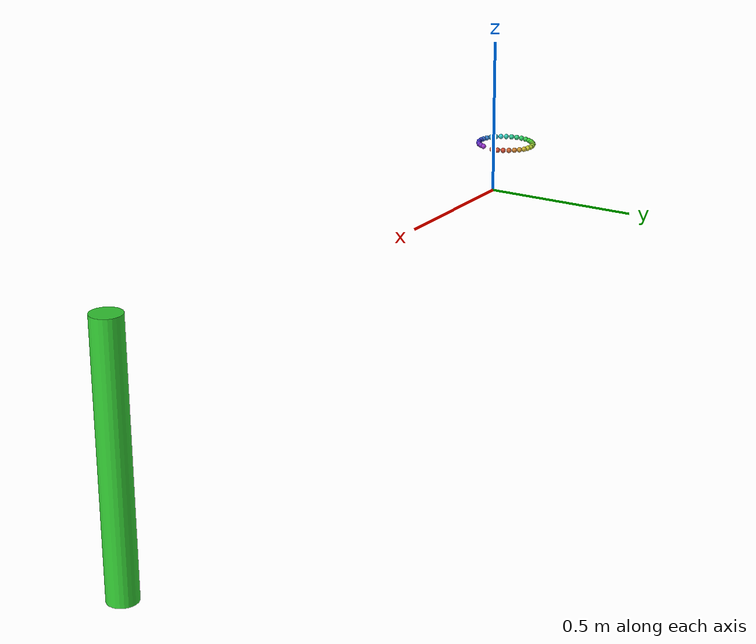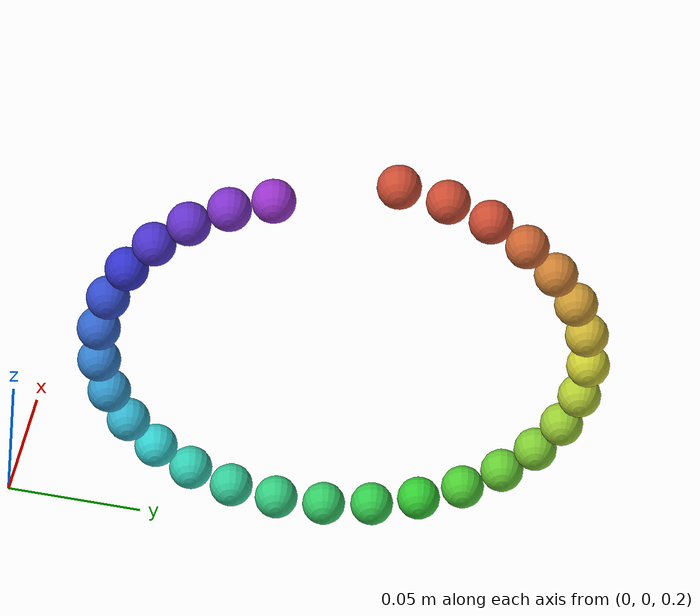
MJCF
<mujoco>
  <compiler angle="radian"/>

  <worldbody>

    <body name="vertical_column" pos="1.92865 -0.01062  -0.22">
      <geom name="vertical_column_geom" type="cylinder" size="0.045 0.40" rgba="0.2 0.8 0.2 1"/>
    </body>

    <!-- 空心圆环主体 -->
    <body name="ring" pos="0.1 0.1 0.2">
      <freejoint/>
      <inertial pos="0 0 0" mass="0.1" diaginertia="0.001 0.001 0.001"/>

      <!-- 使用宏定义来创建30个精确排列的球体 -->
      <body name="center" pos="0 0 0">

        <!-- 第1组: 0° - 108° (红色到黄色) -->
        <body name="sphere0" pos="0.0900 0.0000 0">
          <geom type="sphere" size="0.008" rgba="0.8 0.3 0.2 1"/>
        </body>
        <body name="sphere1" pos="0.0870 0.0187 0">
          <geom type="sphere" size="0.008" rgba="0.8 0.3 0.2 1"/>
        </body>
        <body name="sphere2" pos="0.0810 0.0360 0">
          <geom type="sphere" size="0.008" rgba="0.8 0.3 0.2 1"/>
        </body>
        <body name="sphere3" pos="0.0720 0.0519 0">
          <geom type="sphere" size="0.008" rgba="0.8 0.4 0.2 1"/>
        </body>
        <body name="sphere4" pos="0.0608 0.0657 0">
          <geom type="sphere" size="0.008" rgba="0.8 0.5 0.2 1"/>
        </body>
        <body name="sphere5" pos="0.0477 0.0769 0">
          <geom type="sphere" size="0.008" rgba="0.8 0.6 0.2 1"/>
        </body>
        <body name="sphere6" pos="0.0332 0.0851 0">
          <geom type="sphere" size="0.008" rgba="0.8 0.7 0.2 1"/>
        </body>
        <body name="sphere7" pos="0.0178 0.0900 0">
          <geom type="sphere" size="0.008" rgba="0.8 0.8 0.2 1"/>
        </body>
        <body name="sphere8" pos="0.0014 0.0914 0">
          <geom type="sphere" size="0.008" rgba="0.7 0.8 0.2 1"/>
        </body>
        <body name="sphere9" pos="-0.0150 0.0893 0">
          <geom type="sphere" size="0.008" rgba="0.6 0.8 0.2 1"/>
        </body>

        <!-- 第2组: 108° - 216° (绿色系) -->
        <body name="sphere10" pos="-0.0306 0.0837 0">
          <geom type="sphere" size="0.008" rgba="0.5 0.8 0.2 1"/>
        </body>
        <body name="sphere11" pos="-0.0449 0.0749 0">
          <geom type="sphere" size="0.008" rgba="0.4 0.8 0.2 1"/>
        </body>
        <body name="sphere12" pos="-0.0574 0.0632 0">
          <geom type="sphere" size="0.008" rgba="0.3 0.8 0.2 1"/>
        </body>
        <body name="sphere13" pos="-0.0675 0.0490 0">
          <geom type="sphere" size="0.008" rgba="0.2 0.8 0.2 1"/>
        </body>
        <body name="sphere14" pos="-0.0749 0.0329 0">
          <geom type="sphere" size="0.008" rgba="0.2 0.8 0.3 1"/>
        </body>
        <body name="sphere15" pos="-0.0791 0.0155 0">
          <geom type="sphere" size="0.008" rgba="0.2 0.8 0.4 1"/>
        </body>
        <body name="sphere16" pos="-0.0800 -0.0025 0">
          <geom type="sphere" size="0.008" rgba="0.2 0.8 0.5 1"/>
        </body>
        <body name="sphere17" pos="-0.0776 -0.0203 0">
          <geom type="sphere" size="0.008" rgba="0.2 0.8 0.6 1"/>
        </body>
        <body name="sphere18" pos="-0.0719 -0.0371 0">
          <geom type="sphere" size="0.008" rgba="0.2 0.8 0.7 1"/>
        </body>
        <body name="sphere19" pos="-0.0632 -0.0523 0">
          <geom type="sphere" size="0.008" rgba="0.2 0.8 0.8 1"/>
        </body>

        <!-- 第3组: 216° - 324° (蓝色到紫色) -->
        <body name="sphere20" pos="-0.0519 -0.0653 0">
          <geom type="sphere" size="0.008" rgba="0.2 0.7 0.8 1"/>
        </body>
        <body name="sphere21" pos="-0.0383 -0.0756 0">
          <geom type="sphere" size="0.008" rgba="0.2 0.6 0.8 1"/>
        </body>
        <body name="sphere22" pos="-0.0231 -0.0828 0">
          <geom type="sphere" size="0.008" rgba="0.2 0.5 0.8 1"/>
        </body>
        <body name="sphere23" pos="-0.0069 -0.0866 0">
          <geom type="sphere" size="0.008" rgba="0.2 0.4 0.8 1"/>
        </body>
        <body name="sphere24" pos="0.0096 -0.0869 0">
          <geom type="sphere" size="0.008" rgba="0.2 0.3 0.8 1"/>
        </body>
        <body name="sphere25" pos="0.0257 -0.0837 0">
          <geom type="sphere" size="0.008" rgba="0.2 0.2 0.8 1"/>
        </body>
        <body name="sphere26" pos="0.0405 -0.0771 0">
          <geom type="sphere" size="0.008" rgba="0.3 0.2 0.8 1"/>
        </body>
        <body name="sphere27" pos="0.0536 -0.0675 0">
          <geom type="sphere" size="0.008" rgba="0.4 0.2 0.8 1"/>
        </body>
        <body name="sphere28" pos="0.0643 -0.0553 0">
          <geom type="sphere" size="0.008" rgba="0.5 0.2 0.8 1"/>
        </body>
        <body name="sphere29" pos="0.0722 -0.0411 0">
          <geom type="sphere" size="0.008" rgba="0.6 0.2 0.8 1"/>
        </body>
      </body>
    </body>

  </worldbody>
</mujoco>
